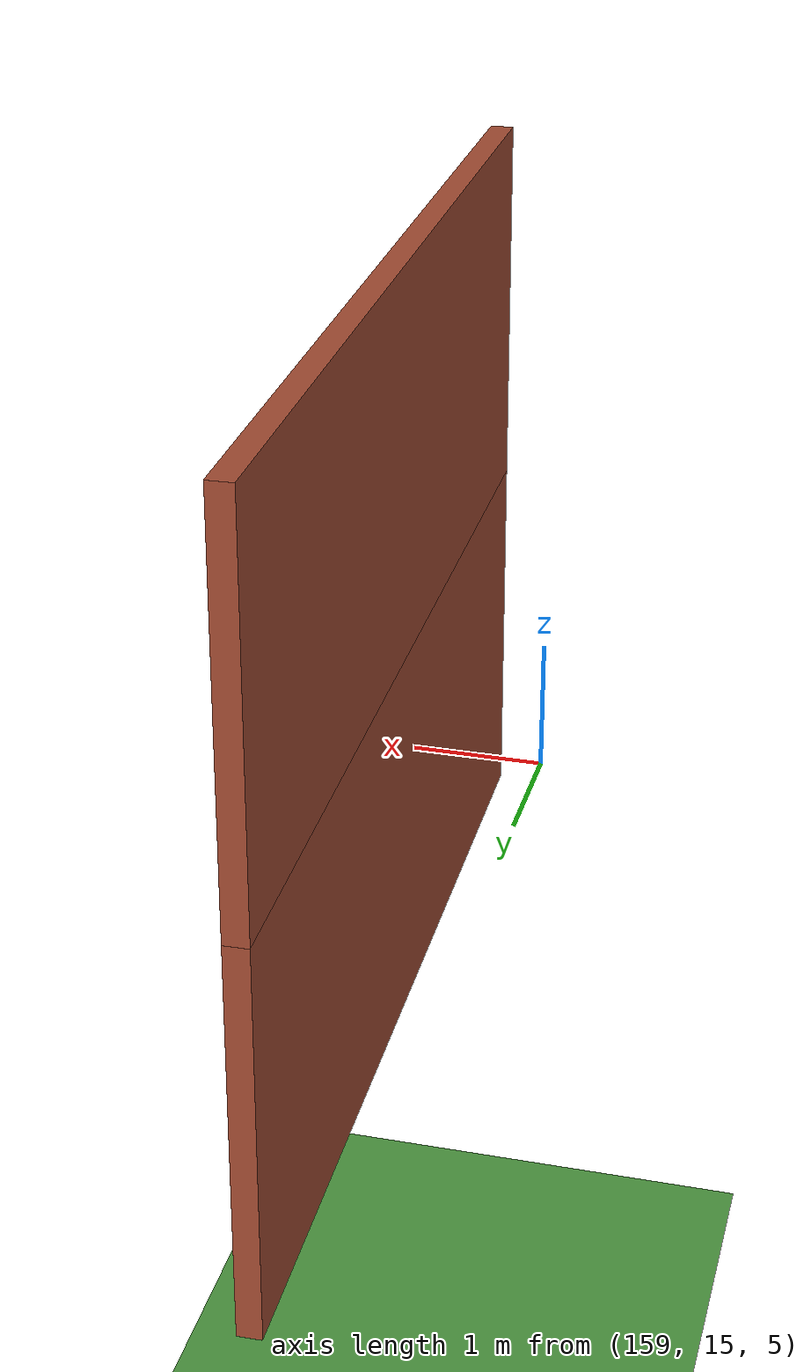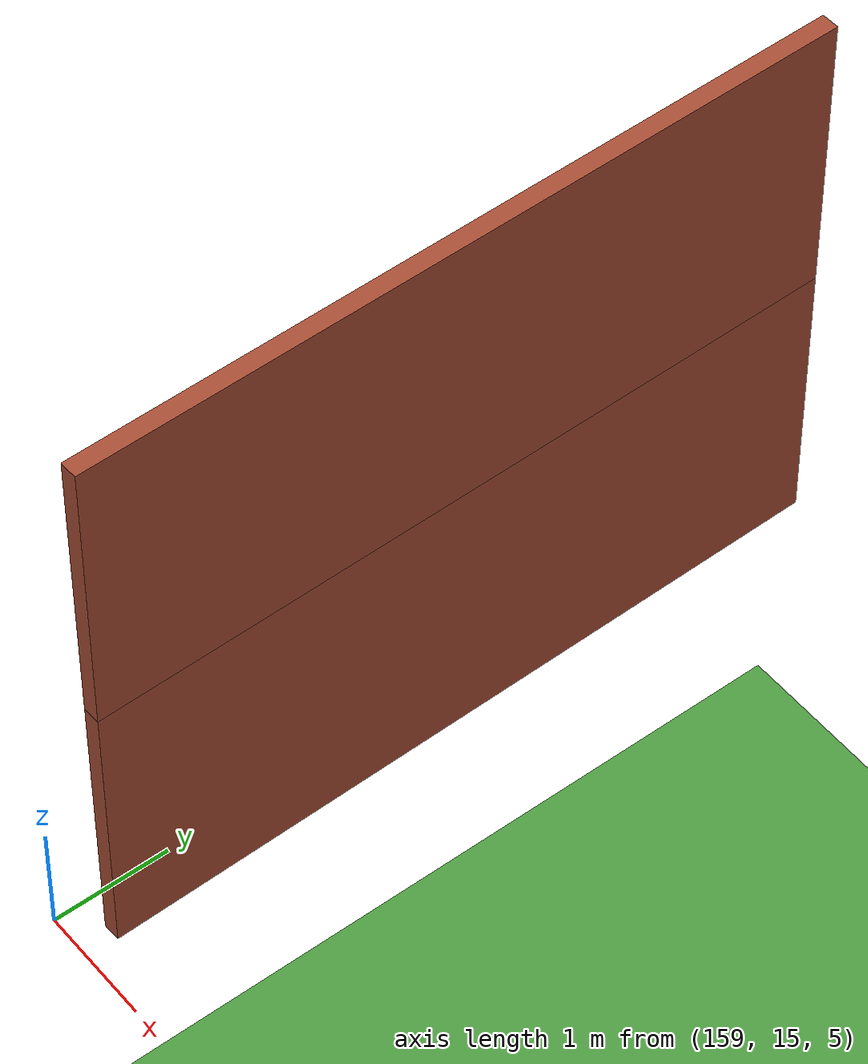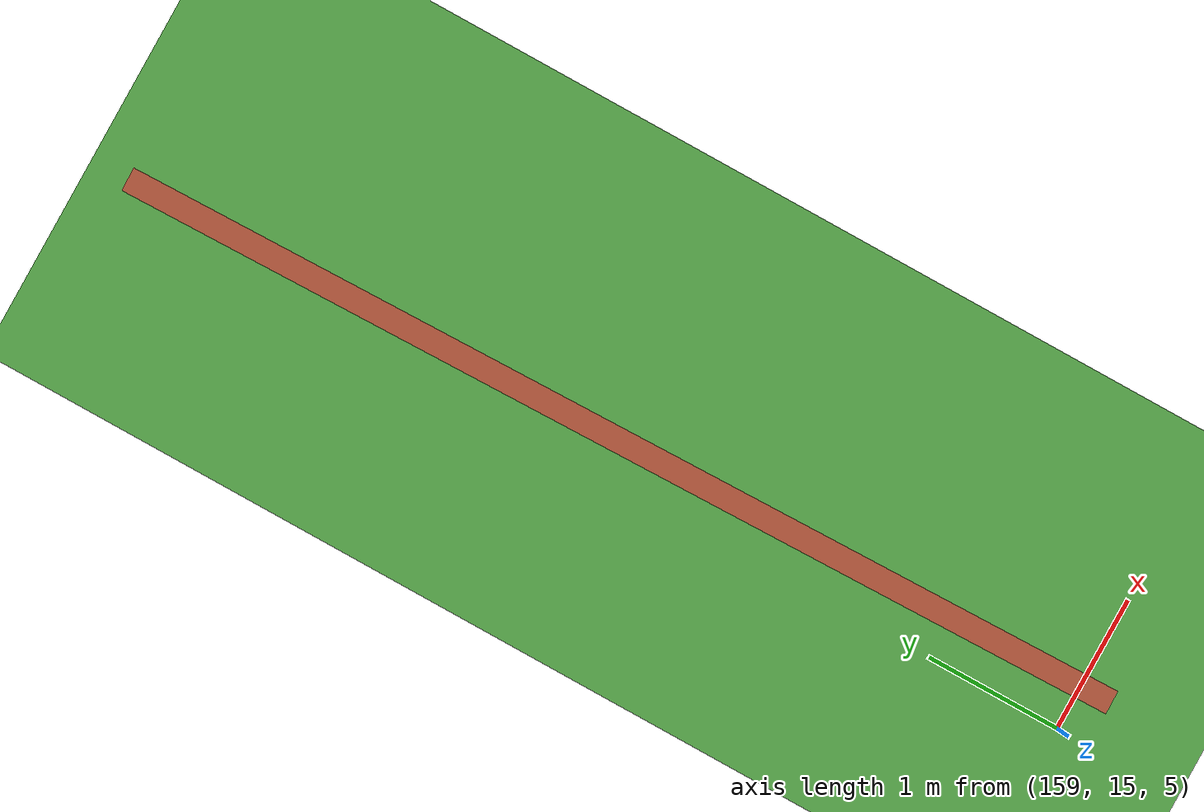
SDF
<sdf version="1.7">
 <world name="default">
  <model name="ground_plane">
   <static>1</static>
   <link name="link">
    <collision name="collision">
     <geometry><plane><normal>0 0 1</normal><size>100 100</size></plane></geometry>
     <surface>
      <contact><collide_bitmask>65535</collide_bitmask></contact>
      <friction><ode><mu>100</mu><mu2>50</mu2></ode></friction>
     </surface>
    </collision>
    <visual name="grass">
     <pose>0 0 -0.1 0 -0 0</pose>
     <cast_shadows>0</cast_shadows>
     <geometry><plane><normal>0 0 1</normal><size>1000 1000</size></plane></geometry>
     <material>
      <script><uri>file://media/materials/scripts/gazebo.material</uri><name>Gazebo/Grass</name></script>
     </material>
    </visual>
   </link>
  </model>
  <model name="asphalt_plane">
   <static>1</static>
   <link name="link">
    <collision name="collision"><geometry><box><size>20 20 0.1</size></box></geometry></collision>
    <visual name="visual">
     <cast_shadows>0</cast_shadows>
     <geometry><box><size>20 20 0.1</size></box></geometry>
     <material>
      <script>
       <uri>model://asphalt_plane/materials/scripts</uri>
       <uri>model://asphalt_plane/materials/textures</uri>
       <name>vrc/asphalt</name>
      </script>
     </material>
    </visual>
   </link>
   <pose>26.7323 45.4974 0 0 -0 0</pose>
  </model>
  <model name="my_building_1_clone">
   <link name="Wall_81">
    <pose>-4.12557 6.05 5 0 -0 3.14159</pose>
    <visual name="Wall_81_Visual">
     <pose>0 0 1.25 0 -0 0</pose>
     <geometry><box><size>6.5 0.15 2.5</size></box></geometry>
     <material>
      <script><uri>file://media/materials/scripts/gazebo.material</uri><name>Gazebo/Bricks</name></script>
      <ambient>1 1 1 1</ambient>
      <shader type="pixel"/>
     </material>
     <meta><layer>2</layer></meta>
    </visual>
    <collision name="Wall_81_Collision">
     <pose>0 0 1.25 0 -0 0</pose>
     <geometry><box><size>6.5 0.15 2.5</size></box></geometry>
     <surface>
      <friction>
       <ode><mu>1</mu><mu2>1</mu2><fdir1>0 0 0</fdir1><slip1>0</slip1><slip2>0</slip2></ode>
       <torsional>
        <coefficient>1</coefficient>
        <patch_radius>0</patch_radius>
        <surface_radius>0</surface_radius>
        <use_patch_radius>1</use_patch_radius>
        <ode><slip>0</slip></ode>
       </torsional>
      </friction>
      <bounce><restitution_coefficient>0</restitution_coefficient><threshold>1e+06</threshold></bounce>
      <contact>
       <collide_without_contact>0</collide_without_contact>
       <collide_without_contact_bitmask>1</collide_without_contact_bitmask>
       <collide_bitmask>1</collide_bitmask>
       <ode>
        <soft_cfm>0</soft_cfm>
        <soft_erp>0.2</soft_erp>
        <kp>1e+13</kp>
        <kd>1</kd>
        <max_vel>0.01</max_vel>
        <min_depth>0</min_depth>
       </ode>
       <bullet>
        <split_impulse>1</split_impulse>
        <split_impulse_penetration_threshold>-0.01</split_impulse_penetration_threshold>
        <soft_cfm>0</soft_cfm>
        <soft_erp>0.2</soft_erp>
        <kp>1e+13</kp>
        <kd>1</kd>
       </bullet>
      </contact>
     </surface>
    </collision>
   </link>
   <link name="Wall_85">
    <pose>-4.12557 6.05 7.5 0 -0 3.14159</pose>
    <visual name="Wall_85_Visual">
     <pose>0 0 1.25 0 -0 0</pose>
     <geometry><box><size>6.5 0.15 2.5</size></box></geometry>
     <material>
      <script><uri>file://media/materials/scripts/gazebo.material</uri><name>Gazebo/Bricks</name></script>
      <ambient>1 1 1 1</ambient>
      <shader type="pixel"/>
     </material>
     <meta><layer>3</layer></meta>
    </visual>
    <collision name="Wall_85_Collision">
     <pose>0 0 1.25 0 -0 0</pose>
     <geometry><box><size>6.5 0.15 2.5</size></box></geometry>
     <surface>
      <friction>
       <ode><mu>1</mu><mu2>1</mu2><fdir1>0 0 0</fdir1><slip1>0</slip1><slip2>0</slip2></ode>
       <torsional>
        <coefficient>1</coefficient>
        <patch_radius>0</patch_radius>
        <surface_radius>0</surface_radius>
        <use_patch_radius>1</use_patch_radius>
        <ode><slip>0</slip></ode>
       </torsional>
      </friction>
      <bounce><restitution_coefficient>0</restitution_coefficient><threshold>1e+06</threshold></bounce>
      <contact>
       <collide_without_contact>0</collide_without_contact>
       <collide_without_contact_bitmask>1</collide_without_contact_bitmask>
       <collide_bitmask>1</collide_bitmask>
       <ode>
        <soft_cfm>0</soft_cfm>
        <soft_erp>0.2</soft_erp>
        <kp>1e+13</kp>
        <kd>1</kd>
        <max_vel>0.01</max_vel>
        <min_depth>0</min_depth>
       </ode>
       <bullet>
        <split_impulse>1</split_impulse>
        <split_impulse_penetration_threshold>-0.01</split_impulse_penetration_threshold>
        <soft_cfm>0</soft_cfm>
        <soft_erp>0.2</soft_erp>
        <kp>1e+13</kp>
        <kd>1</kd>
       </bullet>
      </contact>
     </surface>
    </collision>
   </link>
   <static>1</static>
   <pose>165.249 22.7467 0 0 -0 1.58902</pose>
  </model>
 </world>
</sdf>
